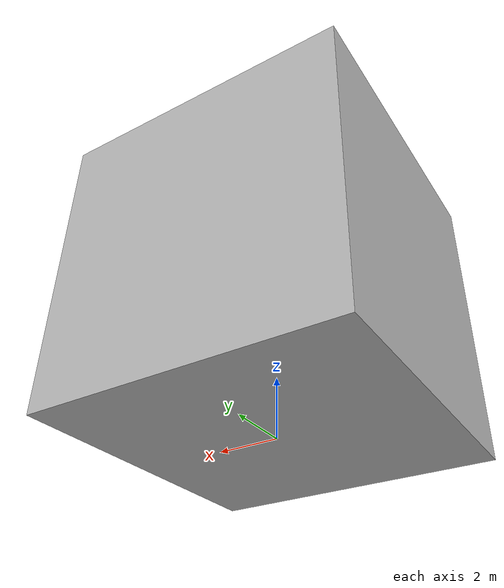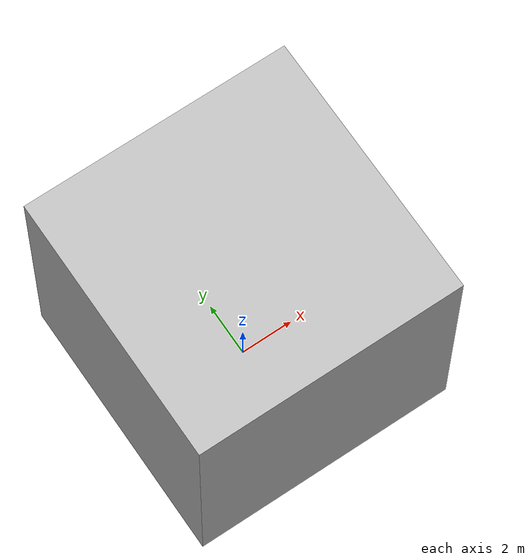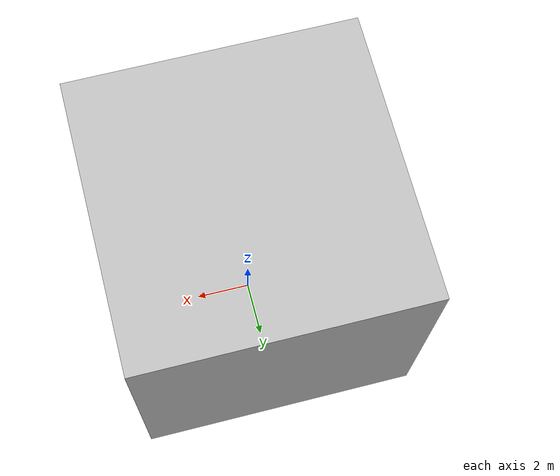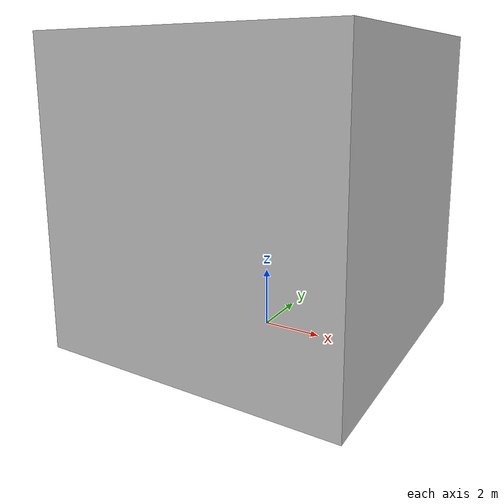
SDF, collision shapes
<?xml version='1.0'?>

<sdf version='1.4'>

	<model name="sixAxis">
	<static>false</static>

<!-- ============================Start Links========================================  -->

<!-- =Links= these define the objects used to build the robot -->

	<link name='base'> <!-- the base of the robot -->
		<pose>0 0 0 0 0 0</pose>
		<gravity>false</gravity>

		<inertial>
			<mass>200</mass>
			<inertia ixx="2" ixy="0" ixz="0" iyy="3" iyz="0" izz="4"/>
		</inertial>
		<collision name='collision'>
			<pose>0 0 5 0 0 0</pose>
			<geometry>
				<box>
				  <size> 10 10 10 </size>
				</box>
			</geometry>
		</collision>

		<visual name='visual'>

		  <geometry>
			<mesh><uri>/home/huniversal/.gazebo/models/sixAxis/base.dae</uri></mesh>
		  </geometry>

		</visual>
	</link>

	<!-- Motors -->
	<link name='motor1'>
		<pose>-0.02924 2.9926 9.49426 0 0 0</pose>
		<gravity>true</gravity>

		<collision name='collision'>
		  <geometry>
			<box>
			  <size> 0.1 0.1 0.1</size>
			</box>
		  </geometry>
		</collision>

		<visual name='visual'>

		  <geometry>
			<mesh><uri>/home/huniversal/.gazebo/models/sixAxis/motorL.dae</uri></mesh>
		  </geometry>
		  <material>
			<ambient>0.3 0.1 0.2 1</ambient>
			<diffuse>0.3 0.1 0.2</diffuse>
			<specular>0.1 0.1 0.1 1</specular>
			<emissive>0 0 0 0</emissive>
		  </material>
		</visual>
	</link>

	<link name='motor2'>
		<pose>0.02924 2.9926 9.49426 0 0 0</pose>
		<gravity>true</gravity>

		<collision name='collision'>
		  <geometry>
			<box>
			  <size> 0.1 0.1 0.1</size>
			</box>
		  </geometry>
		</collision>

		<visual name='visual'>

		  <geometry>
			<mesh><uri>/home/huniversal/.gazebo/models/sixAxis/motorR.dae</uri></mesh>
		  </geometry>
		  <material>
			<ambient>0.3 0.1 0.2 1</ambient>
			<diffuse>0.3 0.1 0.2</diffuse>
			<specular>0.1 0.1 0.1 1</specular>
			<emissive>0 0 0 0</emissive>
		  </material>
		</visual>
	</link>

	<link name='motor3'>
		<pose>0.88071 1.51837 9.49426 0 0 1.047197551</pose>
		<gravity>true</gravity>

		<collision name='collision'>
		  <geometry>
			<box>
			  <size> 0.1 0.1 0.1</size>
			</box>
		  </geometry>
		</collision>

		<visual name='visual'>

		  <geometry>
			<mesh><uri>/home/huniversal/.gazebo/models/sixAxis/motorR.dae</uri></mesh>
		  </geometry>
		  <material>
			<ambient>0.3 0.1 0.2 1</ambient>
			<diffuse>0.3 0.1 0.2</diffuse>
			<specular>0.1 0.1 0.1 1</specular>
			<emissive>0 0 0 0</emissive>
		  </material>
		</visual>
	</link>

	<link name='motor4'>
		<pose>0.85135 1.46699 9.49426 0 0 1.047197551</pose>
		<gravity>true</gravity>

		<collision name='collision'>
		  <geometry>
			<box>
			  <size> 0.1 0.1 0.1</size>
			</box>
		  </geometry>
		</collision>

		<visual name='visual'>

		  <geometry>
			<mesh><uri>/home/huniversal/.gazebo/models/sixAxis/motorL.dae</uri></mesh>
		  </geometry>
		  <material>
			<ambient>0.3 0.1 0.2 1</ambient>
			<diffuse>0.3 0.1 0.2</diffuse>
			<specular>0.1 0.1 0.1 1</specular>
			<emissive>0 0 0 0</emissive>
		  </material>
		</visual>
	</link>

  	<link name='motor5'>
		<pose>-0.85135 1.46699 9.49426 0 0 -1.047197551</pose>
		<gravity>true</gravity>

		<collision name='collision'>
		  <geometry>
			<box>
			  <size> 0.1 0.1 0.1</size>
			</box>
		  </geometry>
		</collision>

		<visual name='visual'>

		  <geometry>
			<mesh><uri>/home/huniversal/.gazebo/models/sixAxis/motorR.dae</uri></mesh>
		  </geometry>
		  <material>
			<ambient>0.3 0.1 0.2 1</ambient>
			<diffuse>0.3 0.1 0.2</diffuse>
			<specular>0.1 0.1 0.1 1</specular>
			<emissive>0 0 0 0</emissive>
		  </material>
		</visual>
	</link>

	<link name='motor6'>
		<pose>-0.88071 1.51837 9.49426 0 0 -1.047197551</pose>
		<gravity>true</gravity>

		<collision name='collision'>
		  <geometry>
			<box>
			  <size> 0.1 0.1 0.1</size>
			</box>
		  </geometry>
		</collision>

		<visual name='visual'>

		  <geometry>
			<mesh><uri>/home/huniversal/.gazebo/models/sixAxis/motorL.dae</uri></mesh>
		  </geometry>
		  <material>
			<ambient>0.3 0.1 0.2 1</ambient>
			<diffuse>0.3 0.1 0.2</diffuse>
			<specular>0.1 0.1 0.1 1</specular>
			<emissive>0 0 0 0</emissive>
		  </material>
		</visual>
	</link>

	<!-- Upper arms -->
	<link name='upperArm1'>
		<pose>-0.10431 2.9926 9.49426 1.570796327 0 1.570796327</pose>
		<gravity>false</gravity>

		<collision name='collision'>
		  <geometry>
			<box>
			  <size> 0.1 0.1 0.1</size>
			</box>
		  </geometry>
		</collision>

		<visual name='visual'>

		  <geometry>
			<mesh><uri>/home/huniversal/.gazebo/models/sixAxis/upperArmL.dae</uri></mesh>
		  </geometry>
		  <material>
			<ambient>1 1 1 1</ambient>
			<diffuse>1 1 1 1</diffuse>
			<specular>0.1 0.1 0.1 1</specular>
			<emissive>0 0 0 0</emissive>
		  </material>
		</visual>
	</link>

 	<link name='upperArm2'>
		<pose>0.10727 2.9926 9.49426 1.570796327 0 1.570796327</pose>
		<gravity>false</gravity>

		<collision name='collision'>
		  <geometry>
			<box>
			  <size> 0.1 0.1 0.1</size>
			</box>
		  </geometry>
		</collision>

		<visual name='visual'>

		  <geometry>
			<mesh><uri>/home/huniversal/.gazebo/models/sixAxis/upperArmR.dae</uri></mesh>
		  </geometry>
		  <material>
			<ambient>1 1 1 1</ambient>
			<diffuse>1 1 1 1</diffuse>
			<specular>0.1 0.1 0.1 1</specular>
			<emissive>0 0 0 0</emissive>
		  </material>
		</visual>
	</link>

 	<link name='upperArm3'>
		<pose>0.9194 1.5846 9.49426 1.570796327 0 -0.523598776</pose>
		<gravity>false</gravity>

		<collision name='collision'>
		  <geometry>
			<box>
			  <size> 0.1 0.1 0.1</size>
			</box>
		  </geometry>
		</collision>

		<visual name='visual'>

		  <geometry>
			<mesh><uri>/home/huniversal/.gazebo/models/sixAxis/upperArmL.dae</uri></mesh>
		  </geometry>
		  <material>
			<ambient>1 1 1 1</ambient>
			<diffuse>1 1 1 1</diffuse>
			<specular>0.1 0.1 0.1 1</specular>
			<emissive>0 0 0 0</emissive>
		  </material>
		</visual>
	</link>

   	<link name='upperArm4'>
		<pose>0.81266 1.40076 9.49426 1.570796327 0 -0.523598776</pose>
		<gravity>false</gravity>

		<collision name='collision'>
		  <geometry>
			<box>
			  <size> 0.1 0.1 0.1</size>
			</box>
		  </geometry>
		</collision>

		<visual name='visual'>

		  <geometry>
			<mesh><uri>/home/huniversal/.gazebo/models/sixAxis/upperArmR.dae</uri></mesh>
		  </geometry>
		  <material>
			<ambient>1 1 1 1</ambient>
			<diffuse>1 1 1 1</diffuse>
			<specular>0.1 0.1 0.1 1</specular>
			<emissive>0 0 0 0</emissive>
		  </material>
		</visual>
	</link>

	<link name='upperArm5'>
		<pose>-0.81266 1.40076 9.49426 1.570796327 0 3.665191429</pose>
		<gravity>false</gravity>

		<collision name='collision'>
		  <geometry>
			<box>
			  <size> 0.1 0.1 0.1</size>
			</box>
		  </geometry>
		</collision>

		<visual name='visual'>

		  <geometry>
			<mesh><uri>/home/huniversal/.gazebo/models/sixAxis/upperArmL.dae</uri></mesh>
		  </geometry>
		  <material>
			<ambient>1 1 1 1</ambient>
			<diffuse>1 1 1 1</diffuse>
			<specular>0.1 0.1 0.1 1</specular>
			<emissive>0 0 0 0</emissive>
		  </material>
		</visual>
	</link>

 	<link name='upperArm6'>
		<pose>-0.9194 1.5846 9.49426 1.570796327 0 3.665191429</pose>
		<gravity>false</gravity>

		<collision name='collision'>
		  <geometry>
			<box>
			  <size> 0.1 0.1 0.1</size>
			</box>
		  </geometry>
		</collision>

		<visual name='visual'>

		  <geometry>
			<mesh><uri>/home/huniversal/.gazebo/models/sixAxis/upperArmR.dae</uri></mesh>
		  </geometry>
		  <material>
			<ambient>1 1 1 1</ambient>
			<diffuse>1 1 1 1</diffuse>
			<specular>0.1 0.1 0.1 1</specular>
			<emissive>0 0 0 0</emissive>
		  </material>
		</visual>
	</link>

	<!-- Lower arms -->
	<link name='lowerArm1'>
		<pose>-0.26051 3.99159 9.49215 0.541052068 3.141592654 0</pose>
		<gravity>false</gravity>

		<collision name='collision'>
		  <geometry>
			<box>
			  <size> 0.1 0.1 0.1</size>
			</box>
		  </geometry>
		</collision>

		<visual name='visual'>

		  <geometry>
			<mesh><uri>/home/huniversal/.gazebo/models/sixAxis/lowerArm.dae</uri></mesh>
		  </geometry>
		  <material>
			<ambient>0.1 10.1 0.1 1</ambient>
			<diffuse>0.1 0.1 0.1 1</diffuse>
			<specular>0.1 0.1 0.1 1</specular>
			<emissive>0 0 0 0</emissive>
		  </material>
		</visual>
	</link>

	<link name='lowerArm2'>
		<pose>0.26191 3.99159 9.49215 0.541052068 3.141592654 0</pose>
		<gravity>false</gravity>

		<collision name='collision'>
		  <geometry>
			<box>
			  <size> 0.1 0.1 0.1</size>
			</box>
		  </geometry>
		</collision>

		<visual name='visual'>

		  <geometry>
			<mesh><uri>/home/huniversal/.gazebo/models/sixAxis/lowerArm.dae</uri></mesh>
		  </geometry>
		  <material>
			<ambient>0.1 10.1 0.1 1</ambient>
			<diffuse>0.1 0.1 0.1 1</diffuse>
			<specular>0.1 0.1 0.1 1</specular>
			<emissive>0 0 0 0</emissive>
		  </material>
		</visual>
	</link>

	<link name='lowerArm3'>
		<pose>1.86084 1.22328 9.49215 0.541052068 3.141592654 -2.094395102</pose>
		<gravity>false</gravity>

		<collision name='collision'>
		  <geometry>
			<box>
			  <size> 0.1 0.1 0.1</size>
			</box>
		  </geometry>
		</collision>

		<visual name='visual'>

		  <geometry>
			<mesh><uri>/home/huniversal/.gazebo/models/sixAxis/lowerArm.dae</uri></mesh>
		  </geometry>
		  <material>
			<ambient>0.1 10.1 0.1 1</ambient>
			<diffuse>0.1 0.1 0.1 1</diffuse>
			<specular>0.1 0.1 0.1 1</specular>
			<emissive>0 0 0 0</emissive>
		  </material>
		</visual>
	</link>

	<link name='lowerArm4'>
		<pose>1.59767 0.76795 9.49215 0.541052068 3.141592654 -2.094395102</pose>
		<gravity>false</gravity>

		<collision name='collision'>
		  <geometry>
			<box>
			  <size> 0.1 0.1 0.1</size>
			</box>
		  </geometry>
		</collision>

		<visual name='visual'>

		  <geometry>
			<mesh><uri>/home/huniversal/.gazebo/models/sixAxis/lowerArm.dae</uri></mesh>
		  </geometry>
		  <material>
			<ambient>0.1 10.1 0.1 1</ambient>
			<diffuse>0.1 0.1 0.1 1</diffuse>
			<specular>0.1 0.1 0.1 1</specular>
			<emissive>0 0 0 0</emissive>
		  </material>
		</visual>
	</link>

	<link name='lowerArm5'>
		<pose>-1.59767 0.76795 9.49215 0.541052068 3.141592654 2.094395102</pose>
		<gravity>false</gravity>

		<collision name='collision'>
		  <geometry>
			<box>
			  <size> 0.1 0.1 0.1</size>
			</box>
		  </geometry>
		</collision>

		<visual name='visual'>

		  <geometry>
			<mesh><uri>/home/huniversal/.gazebo/models/sixAxis/lowerArm.dae</uri></mesh>
		  </geometry>
		  <material>
			<ambient>0.1 10.1 0.1 1</ambient>
			<diffuse>0.1 0.1 0.1 1</diffuse>
			<specular>0.1 0.1 0.1 1</specular>
			<emissive>0 0 0 0</emissive>
		  </material>
		</visual>
	</link>

	<link name='lowerArm6'>
		<pose>-1.86084 1.22328 9.49215 0.541052068 3.141592654 2.094395102</pose>
		<gravity>false</gravity>

		<collision name='collision'>
		  <geometry>
			<box>
			  <size> 0.1 0.1 0.1</size>
			</box>
		  </geometry>
		</collision>

		<visual name='visual'>

		  <geometry>
			<mesh><uri>/home/huniversal/.gazebo/models/sixAxis/lowerArm.dae</uri></mesh>
		  </geometry>
		  <material>
			<ambient>0.1 10.1 0.1 1</ambient>
			<diffuse>0.1 0.1 0.1 1</diffuse>
			<specular>0.1 0.1 0.1 1</specular>
			<emissive>0 0 0 0</emissive>
		  </material>
		</visual>
	</link>

	<!-- platform -->
	<link name='platform'>
		<pose>0 1.99156 6.78392 1.570796327 0 0.523598776</pose>
		<gravity>true</gravity>
		<inertial>
			<mass>10</mass>
		</inertial>
		<collision name='collision'>
		  <geometry>
			<box>
			  <size> 0.1 0.1 0.1</size>
			</box>
		  </geometry>
		</collision>

		<visual name='visual'>

		  <geometry>
			<mesh><uri>/home/huniversal/.gazebo/models/sixAxis/platformFull.dae</uri></mesh>
		  </geometry>
		  <material>
			<ambient>1 0 0 1</ambient>
			<diffuse>1 0 0 1</diffuse>
			<specular>0.1 0.1 0.1 1</specular>
			<emissive>0 0 0 0</emissive>
		  </material>
		</visual>
	</link>

<!-- ============================End Links========================================  -->

<!-- ============================Start Joints========================================  -->

<!-- =Joint= these connect links together useing joints to simulate motors  -->

	<!-- connecting the motors to the base -->
	<joint type="prismatic" name="MotortoBase1"><!-- motor1 to base-->
		<pose>0 0 0 0 0 0</pose>
		<child>base</child>
		<parent>motor1</parent>
		<axis>
			<xyz>1 0 0</xyz>
			<limit>
				<upper>0.01</upper>
				<lower>0.0</lower>
			</limit>
			<dynamics>
				<damping>20</damping>
			</dynamics>
		</axis>
	</joint>

	<joint type="prismatic" name="MotortoBase2"><!-- motor2 to base-->
		<pose>0 0 0 0 0 0</pose>
		<child>base</child>
		<parent>motor2</parent>
		<axis>
			<xyz>1 0 0</xyz>
			<limit>
				<upper>0.01</upper>
				<lower>0.0</lower>
			</limit>
			<dynamics>
				<damping>20</damping>
			</dynamics>
		</axis>
	</joint>

	<joint type="prismatic" name="MotortoBase3"><!-- motor3 to base-->
		<pose>0 0 0 0 0 0</pose>
		<child>base</child>
		<parent>motor3</parent>
		<axis>
			<xyz>1 0 0</xyz>
			<limit>
				<upper>0.01</upper>
				<lower>0.0</lower>
			</limit>
			<dynamics>
				<damping>20</damping>
			</dynamics>
		</axis>
	</joint>

	<joint type="prismatic" name="MotortoBase4"><!-- motor4 to base-->
		<pose>0 0 0 0 0 0</pose>
		<child>base</child>
		<parent>motor4</parent>
		<axis>
			<xyz>1 0 0</xyz>
			<limit>
				<upper>0.01</upper>
				<lower>0.0</lower>
			</limit>
			<dynamics>
				<damping>20</damping>
			</dynamics>
		</axis>
	</joint>

	<joint type="prismatic" name="MotortoBase5"><!-- motor5 to base-->
		<pose>0 0 0 0 0 0</pose>
		<child>base</child>
		<parent>motor5</parent>
		<axis>
			<xyz>1 0 0</xyz>
			<limit>
				<upper>0.01</upper>
				<lower>0.0</lower>
			</limit>
			<dynamics>
				<damping>20</damping>
			</dynamics>
		</axis>
	</joint>

	<joint type="prismatic" name="MotortoBase6"><!-- motor6 to base-->
		<pose>0 0 0 0 0 0</pose>
		<child>base</child>
		<parent>motor6</parent>
		<axis>
			<xyz>1 0 0</xyz>
			<limit>
				<upper>0.01</upper>
				<lower>0.0</lower>
			</limit>
			<dynamics>
				<damping>20</damping>
			</dynamics>
		</axis>
	</joint>

	<!-- connecting the base to a kind of hacked object to make it stay on its place -->
	<joint type="prismatic" name="BaseToWorld">
		<pose>0 0 0 0 0 0</pose>
		<child>world</child>
		<parent>base</parent>
		<axis>
			<xyz>1 0 0</xyz>
			<limit>
				<upper>0.0</upper>
				<lower>0.0</lower>
			</limit>
			<dynamics>
				<damping>20</damping>
			</dynamics>
		</axis>
	</joint>

	<!-- connecting upper arms to respective motors -->
	<joint type="revolute" name="upperArmToMotor1>"><!-- upper arm 1 to motor 1-->
		<pose>0 0 0 0 0 0</pose>
		<child>upperArm1</child>
		<parent>motor1</parent>
		<axis>
			<xyz>1 0 0</xyz>

			<dynamics>
				<damping>5</damping>
			</dynamics>
		</axis>
	</joint>

	<joint type="revolute" name="upperArmToMotor2>"><!-- upper arm 2 to motor 2-->
		<pose>0 0 0 0 0 0</pose>
		<child>upperArm2</child>
		<parent>motor2</parent>
		<axis>
			<xyz>1 0 0</xyz>

			<dynamics>
				<damping>5</damping>
			</dynamics>
		</axis>
	</joint>

	<joint type="revolute" name="upperArmToMotor3>"><!-- upper arm 3 to motor 3-->
		<pose>0 0 0 0 0 0</pose>
		<child>upperArm3</child>
		<parent>motor3</parent>
		<axis>
			<xyz>-0.5 -0.8660 0</xyz>

			<dynamics>
				<damping>5</damping>
			</dynamics>
		</axis>
	</joint>

	<joint type="revolute" name="upperArmToMotor4>"><!-- upper arm 4 to motor 4-->
		<pose>0 0 0 0 0 0</pose>
		<child>upperArm4</child>
		<parent>motor4</parent>
		<axis>
			<xyz>-0.5 -0.8660 0</xyz>

			<dynamics>
				<damping>5</damping>
			</dynamics>
		</axis>
	</joint>

	<joint type="revolute" name="upperArmToMotor5>"><!-- upper arm 5 to motor 5-->
		<pose>0 0 0 0 0 0</pose>
		<child>upperArm5</child>
		<parent>motor5</parent>
		<axis>
			<xyz>0.5 -0.8660 0</xyz>

			<dynamics>
				<damping>5</damping>
			</dynamics>
		</axis>
	</joint>

	<joint type="revolute" name="upperArmToMotor6>"><!-- upper arm 6 to motor 6-->
		<pose>0 0 0 0 0 0</pose>
		<child>upperArm6</child>
		<parent>motor6</parent>
		<axis>
			<xyz>0.5 -0.8660 0</xyz>

			<dynamics>
				<damping>5</damping>
			</dynamics>
		</axis>
	</joint>

	<!-- connecting lower arms to respective upper arms -->

	<joint type="universal" name="lowerArmToUpperArm1>"><!--  lower arm 1 to upper arm 1 -->
		<pose>0 0 0 0 0 0</pose>
		<child>lowerArm1</child>
		<parent>upperArm1</parent>
		<axis>
			<xyz>0 1 0</xyz>

			<dynamics>
				<damping>5</damping>
			</dynamics>
		</axis>

		<axis2>
			<xyz>1 0 0</xyz>

			<dynamics>
				<damping>1</damping>
			</dynamics>
		</axis2>
	</joint>

	<joint type="universal" name="lowerArmToUpperArm2>"><!--  lower arm 2 to upper arm 2 -->
		<pose>0 0 0 0 0 0</pose>
		<child>lowerArm2</child>
		<parent>upperArm2</parent>
		<axis>
			<xyz>0 1 0</xyz>

			<dynamics>
				<damping>5</damping>
			</dynamics>
		</axis>

		<axis2>
			<xyz>1 0 0</xyz>

			<dynamics>
				<damping>1</damping>
			</dynamics>
		</axis2>
	</joint>

	<joint type="universal" name="lowerArmToUpperArm3>"><!--  lower arm 3 to upper arm 3 -->
		<pose>0 0 0 0 0 0</pose>
		<child>lowerArm3</child>
		<parent>upperArm3</parent>
		<axis>
			<xyz>0 1 0</xyz>

			<dynamics>
				<damping>5</damping>
			</dynamics>
		</axis>

		<axis2>
			<xyz>1 0 0</xyz>

			<dynamics>
				<damping>1</damping>
			</dynamics>
		</axis2>
	</joint>

	<joint type="universal" name="lowerArmToUpperArm4>"><!--  lower arm 4 to upper arm 4 -->
		<pose>0 0 0 0 0 0</pose>
		<child>lowerArm4</child>
		<parent>upperArm4</parent>
		<axis>
			<xyz>0 1 0</xyz>

			<dynamics>
				<damping>5</damping>
			</dynamics>
		</axis>

		<axis2>
			<xyz>1 0 0</xyz>

			<dynamics>
				<damping>1</damping>
			</dynamics>
		</axis2>
	</joint>

	<joint type="universal" name="lowerArmToUpperArm5>"><!--  lower arm 3 to upper arm 3 -->
		<pose>0 0 0 0 0 0</pose>
		<child>lowerArm5</child>
		<parent>upperArm5</parent>
		<axis>
			<xyz>0 1 0</xyz>

			<dynamics>
				<damping>5</damping>
			</dynamics>
		</axis>

		<axis2>
			<xyz>1 0 0</xyz>

			<dynamics>
				<damping>1</damping>
			</dynamics>
		</axis2>
	</joint>

	<joint type="universal" name="lowerArmToUpperArm6>"><!--  lower arm 4 to upper arm 4 -->
		<pose>0 0 0 0 0 0</pose>
		<child>lowerArm6</child>
		<parent>upperArm6</parent>
		<axis>
			<xyz>0 1 0</xyz>

			<dynamics>
				<damping>5</damping>
			</dynamics>
		</axis>

		<axis2>
			<xyz>1 0 0</xyz>

			<dynamics>
				<damping>1</damping>
			</dynamics>
		</axis2>
	</joint>

	<joint type="universal" name="lowerArmToPlatform1>"><!--  lower arm 1 to upper arm 1 -->
		<pose>0 0 3.05 0 0 0</pose>
		<child>lowerArm1</child>
		<parent>platform</parent>
		<axis>
			<xyz>0 1 0</xyz>

			<dynamics>
				<damping>1</damping>
			</dynamics>
		</axis>

		<axis2>
			<xyz>0 0 1</xyz>

			<dynamics>
				<damping>1</damping>
			</dynamics>
		</axis2>
	</joint>

	<joint type="universal" name="lowerArmToPlatform2>"><!--  lower arm 1 to upper arm 1 -->
		<pose>0 0 3.05 0 0 0</pose>
		<child>lowerArm2</child>
		<parent>platform</parent>
		<axis>
			<xyz>0 1 0</xyz>

			<dynamics>
				<damping>1</damping>
			</dynamics>
		</axis>

		<axis2>
			<xyz>0 0 1</xyz>

			<dynamics>
				<damping>1</damping>
			</dynamics>
		</axis2>
	</joint>

	<joint type="universal" name="lowerArmToPlatform3>"><!--  lower arm 1 to upper arm 1 -->
		<pose>0 0 3.05 0 0 0</pose>
		<child>lowerArm3</child>
		<parent>platform</parent>
		<axis>
			<xyz>0 1 0</xyz>

			<dynamics>
				<damping>1</damping>
			</dynamics>
		</axis>

		<axis2>
			<xyz>0 0 1</xyz>

			<dynamics>
				<damping>1</damping>
			</dynamics>
		</axis2>
	</joint>

	<joint type="universal" name="lowerArmToPlatform4>"><!--  lower arm 1 to upper arm 1 -->
		<pose>0 0 3.05 0 0 0</pose>
		<child>lowerArm4</child>
		<parent>platform</parent>
		<axis>
			<xyz>0 1 0</xyz>

			<dynamics>
				<damping>1</damping>
			</dynamics>
		</axis>

		<axis2>
			<xyz>0 0 1</xyz>

			<dynamics>
				<damping>1</damping>
			</dynamics>
		</axis2>
	</joint>

	<joint type="universal" name="lowerArmToPlatform5>"><!--  lower arm 1 to upper arm 1 -->
		<pose>0 0 3.05 0 0 0</pose>
		<child>lowerArm5</child>
		<parent>platform</parent>
		<axis>
			<xyz>0 1 0</xyz>

			<dynamics>
				<damping>1</damping>
			</dynamics>
		</axis>

		<axis2>
			<xyz>0 0 1</xyz>

			<dynamics>
				<damping>1</damping>
			</dynamics>
		</axis2>
	</joint>

	<joint type="universal" name="lowerArmToPlatform6>"><!--  lower arm 1 to upper arm 1 -->
		<pose>0 0 3.05 0 0 0</pose>
		<child>lowerArm6</child>
		<parent>platform</parent>
		<axis>
			<xyz>0 1 0</xyz>

			<dynamics>
				<damping>1</damping>
			</dynamics>
		</axis>

		<axis2>
			<xyz>0 0 1</xyz>

			<dynamics>
				<damping>1</damping>
			</dynamics>
		</axis2>
	</joint>

  </model>
</sdf>
